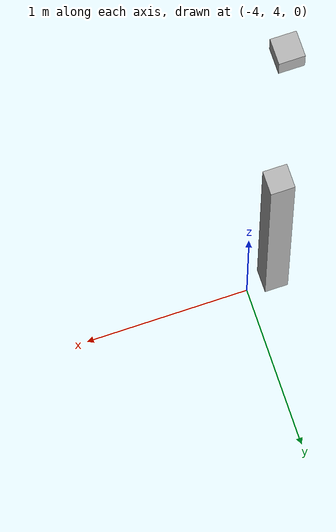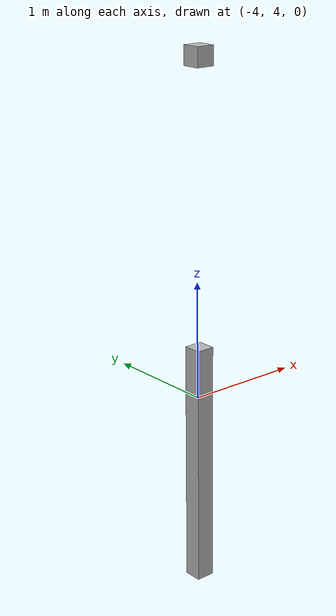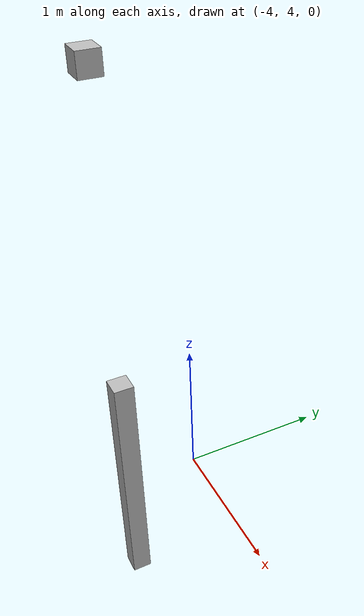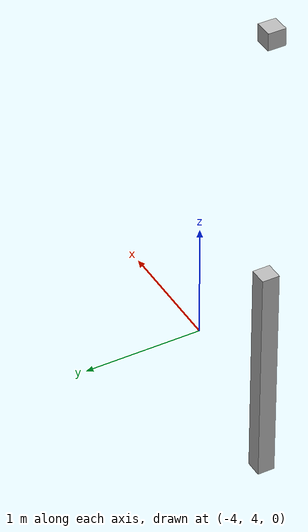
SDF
<sdf version="1.7">
 <world name="default">
  <model name="orthogonal_747_2.000.15_TS">
   <static>1</static>
   <link name="z_link_1_4_1">
    <inertial>
     <mass>1</mass>
     <inertia>
      <ixx>0.166667</ixx>
      <ixy>0</ixy>
      <ixz>0</ixz>
      <iyy>0.166667</iyy>
      <iyz>0</iyz>
      <izz>0.166667</izz>
     </inertia>
    </inertial>
    <pose>2.15 8.6 2.15 0 -0 0</pose>
    <visual name="visual_0">
     <laser_retro>1527</laser_retro>
     <geometry><box><size>0.15 1e-06 2</size></box></geometry>
     <material>
      <script><name>Gazebo/Grey</name><uri>file://media/materials/scripts/gazebo.material</uri></script>
      <shader type="pixel"><normal_map>__default__</normal_map></shader>
      <ambient>0.678 0.498 0.659 1</ambient>
      <diffuse>0.7 0.7 0.7 1</diffuse>
      <specular>0.01 0.01 0.01 1</specular>
      <emissive>0 0 0 1</emissive>
     </material>
     <pose>0 -0.075 0 0 -0 0</pose>
     <transparency>1</transparency>
    </visual>
    <visual name="visual_1">
     <laser_retro>1528</laser_retro>
     <geometry><box><size>0.15 1e-06 2</size></box></geometry>
     <material>
      <script><name>Gazebo/Grey</name><uri>file://media/materials/scripts/gazebo.material</uri></script>
      <shader type="pixel"><normal_map>__default__</normal_map></shader>
      <ambient>0.447 0.624 0.812 1</ambient>
      <diffuse>0.7 0.7 0.7 1</diffuse>
      <specular>0.01 0.01 0.01 1</specular>
      <emissive>0 0 0 1</emissive>
     </material>
     <pose>0 0.075 0 0 -0 0</pose>
     <transparency>1</transparency>
    </visual>
    <visual name="visual_2">
     <laser_retro>1529</laser_retro>
     <geometry><box><size>0.15 0.15 1e-06</size></box></geometry>
     <material>
      <script><name>Gazebo/Grey</name><uri>file://media/materials/scripts/gazebo.material</uri></script>
      <shader type="pixel"><normal_map>__default__</normal_map></shader>
      <ambient>0.988 0.686 0.243 1</ambient>
      <diffuse>0.7 0.7 0.7 1</diffuse>
      <specular>0.01 0.01 0.01 1</specular>
      <emissive>0 0 0 1</emissive>
     </material>
     <pose>0 0 -1 0 -0 0</pose>
     <transparency>1</transparency>
    </visual>
    <visual name="visual_3">
     <laser_retro>1530</laser_retro>
     <geometry><box><size>1e-06 0.15 2</size></box></geometry>
     <material>
      <script><name>Gazebo/Grey</name><uri>file://media/materials/scripts/gazebo.material</uri></script>
      <shader type="pixel"><normal_map>__default__</normal_map></shader>
      <ambient>0.988 0.914 0.31 1</ambient>
      <diffuse>0.7 0.7 0.7 1</diffuse>
      <specular>0.01 0.01 0.01 1</specular>
      <emissive>0 0 0 1</emissive>
     </material>
     <pose>0.075 0 0 0 -0 0</pose>
     <transparency>1</transparency>
    </visual>
    <visual name="visual_4">
     <laser_retro>1531</laser_retro>
     <geometry><box><size>0.15 0.15 1e-06</size></box></geometry>
     <material>
      <script><name>Gazebo/Grey</name><uri>file://media/materials/scripts/gazebo.material</uri></script>
      <shader type="pixel"><normal_map>__default__</normal_map></shader>
      <ambient>0.937 0.161 0.161 1</ambient>
      <diffuse>0.7 0.7 0.7 1</diffuse>
      <specular>0.01 0.01 0.01 1</specular>
      <emissive>0 0 0 1</emissive>
     </material>
     <pose>0 0 1 0 -0 0</pose>
     <transparency>1</transparency>
    </visual>
    <visual name="visual_5">
     <laser_retro>1532</laser_retro>
     <geometry><box><size>1e-06 0.15 2</size></box></geometry>
     <material>
      <script><name>Gazebo/Grey</name><uri>file://media/materials/scripts/gazebo.material</uri></script>
      <shader type="pixel"><normal_map>__default__</normal_map></shader>
      <ambient>0.541 0.886 0.204 1</ambient>
      <diffuse>0.7 0.7 0.7 1</diffuse>
      <specular>0.01 0.01 0.01 1</specular>
      <emissive>0 0 0 1</emissive>
     </material>
     <pose>-0.075 0 0 0 -0 0</pose>
     <transparency>1</transparency>
    </visual>
    <visual name="visual_texture">
     <geometry><box><size>0.149985 0.149985 1.9998</size></box></geometry>
     <material>
      <script>
       <uri>model://BASE_MODELS/simple_block_v2_textured/materials/scripts</uri>
       <uri>model://BASE_MODELS/simple_block_v2_textured/materials/textures</uri>
       <name>metal</name>
      </script>
     </material>
     <laser_retro>1533</laser_retro>
    </visual>
    <collision name="collision">
     <geometry><box><size>0.15 0.15 2</size></box></geometry>
     <surface>
      <friction>
       <ode><mu>1</mu><mu2>1</mu2><fdir1>0 0 0</fdir1><slip1>0</slip1><slip2>0</slip2></ode>
       <torsional>
        <coefficient>1</coefficient>
        <patch_radius>0</patch_radius>
        <surface_radius>0</surface_radius>
        <use_patch_radius>1</use_patch_radius>
        <ode><slip>0</slip></ode>
       </torsional>
      </friction>
      <bounce><restitution_coefficient>0</restitution_coefficient><threshold>1e+06</threshold></bounce>
      <contact>
       <collide_without_contact>0</collide_without_contact>
       <collide_without_contact_bitmask>1</collide_without_contact_bitmask>
       <collide_bitmask>1</collide_bitmask>
       <ode>
        <soft_cfm>0</soft_cfm>
        <soft_erp>0.2</soft_erp>
        <kp>1e+13</kp>
        <kd>1</kd>
        <max_vel>0.01</max_vel>
        <min_depth>0</min_depth>
       </ode>
       <bullet>
        <split_impulse>1</split_impulse>
        <split_impulse_penetration_threshold>-0.01</split_impulse_penetration_threshold>
        <soft_cfm>0</soft_cfm>
        <soft_erp>0.2</soft_erp>
        <kp>1e+13</kp>
        <kd>1</kd>
       </bullet>
      </contact>
     </surface>
    </collision>
   </link>
   <link name="u_link_2_4_1">
    <inertial>
     <mass>1</mass>
     <inertia>
      <ixx>0.166667</ixx>
      <ixy>0</ixy>
      <ixz>0</ixz>
      <iyy>0.166667</iyy>
      <iyz>0</iyz>
      <izz>0.166667</izz>
     </inertia>
    </inertial>
    <pose>2.15 8.6 5.375 0 -0 0</pose>
    <visual name="visual_0">
     <laser_retro>2423</laser_retro>
     <geometry><box><size>0.15 1e-06 0.15</size></box></geometry>
     <material>
      <script><name>Gazebo/Grey</name><uri>file://media/materials/scripts/gazebo.material</uri></script>
      <shader type="pixel"><normal_map>__default__</normal_map></shader>
      <ambient>0.678 0.498 0.659 1</ambient>
      <diffuse>0.7 0.7 0.7 1</diffuse>
      <specular>0.01 0.01 0.01 1</specular>
      <emissive>0 0 0 1</emissive>
     </material>
     <pose>0 -0.075 0 0 -0 0</pose>
     <transparency>1</transparency>
    </visual>
    <visual name="visual_1">
     <laser_retro>2424</laser_retro>
     <geometry><box><size>0.15 1e-06 0.15</size></box></geometry>
     <material>
      <script><name>Gazebo/Grey</name><uri>file://media/materials/scripts/gazebo.material</uri></script>
      <shader type="pixel"><normal_map>__default__</normal_map></shader>
      <ambient>0.447 0.624 0.812 1</ambient>
      <diffuse>0.7 0.7 0.7 1</diffuse>
      <specular>0.01 0.01 0.01 1</specular>
      <emissive>0 0 0 1</emissive>
     </material>
     <pose>0 0.075 0 0 -0 0</pose>
     <transparency>1</transparency>
    </visual>
    <visual name="visual_2">
     <laser_retro>2425</laser_retro>
     <geometry><box><size>0.15 0.15 1e-06</size></box></geometry>
     <material>
      <script><name>Gazebo/Grey</name><uri>file://media/materials/scripts/gazebo.material</uri></script>
      <shader type="pixel"><normal_map>__default__</normal_map></shader>
      <ambient>0.988 0.686 0.243 1</ambient>
      <diffuse>0.7 0.7 0.7 1</diffuse>
      <specular>0.01 0.01 0.01 1</specular>
      <emissive>0 0 0 1</emissive>
     </material>
     <pose>0 0 -0.075 0 -0 0</pose>
     <transparency>1</transparency>
    </visual>
    <visual name="visual_3">
     <laser_retro>2426</laser_retro>
     <geometry><box><size>1e-06 0.15 0.15</size></box></geometry>
     <material>
      <script><name>Gazebo/Grey</name><uri>file://media/materials/scripts/gazebo.material</uri></script>
      <shader type="pixel"><normal_map>__default__</normal_map></shader>
      <ambient>0.988 0.914 0.31 1</ambient>
      <diffuse>0.7 0.7 0.7 1</diffuse>
      <specular>0.01 0.01 0.01 1</specular>
      <emissive>0 0 0 1</emissive>
     </material>
     <pose>0.075 0 0 0 -0 0</pose>
     <transparency>1</transparency>
    </visual>
    <visual name="visual_4">
     <laser_retro>2427</laser_retro>
     <geometry><box><size>0.15 0.15 1e-06</size></box></geometry>
     <material>
      <script><name>Gazebo/Grey</name><uri>file://media/materials/scripts/gazebo.material</uri></script>
      <shader type="pixel"><normal_map>__default__</normal_map></shader>
      <ambient>0.937 0.161 0.161 1</ambient>
      <diffuse>0.7 0.7 0.7 1</diffuse>
      <specular>0.01 0.01 0.01 1</specular>
      <emissive>0 0 0 1</emissive>
     </material>
     <pose>0 0 0.075 0 -0 0</pose>
     <transparency>1</transparency>
    </visual>
    <visual name="visual_5">
     <laser_retro>2428</laser_retro>
     <geometry><box><size>1e-06 0.15 0.15</size></box></geometry>
     <material>
      <script><name>Gazebo/Grey</name><uri>file://media/materials/scripts/gazebo.material</uri></script>
      <shader type="pixel"><normal_map>__default__</normal_map></shader>
      <ambient>0.541 0.886 0.204 1</ambient>
      <diffuse>0.7 0.7 0.7 1</diffuse>
      <specular>0.01 0.01 0.01 1</specular>
      <emissive>0 0 0 1</emissive>
     </material>
     <pose>-0.075 0 0 0 -0 0</pose>
     <transparency>1</transparency>
    </visual>
    <visual name="visual_texture">
     <geometry><box><size>0.149985 0.149985 0.149985</size></box></geometry>
     <material>
      <script>
       <uri>model://BASE_MODELS/simple_block_v2_textured/materials/scripts</uri>
       <uri>model://BASE_MODELS/simple_block_v2_textured/materials/textures</uri>
       <name>metal</name>
      </script>
     </material>
     <laser_retro>2429</laser_retro>
    </visual>
    <collision name="collision">
     <geometry><box><size>0.15 0.15 0.15</size></box></geometry>
     <surface>
      <friction>
       <ode><mu>1</mu><mu2>1</mu2><fdir1>0 0 0</fdir1><slip1>0</slip1><slip2>0</slip2></ode>
       <torsional>
        <coefficient>1</coefficient>
        <patch_radius>0</patch_radius>
        <surface_radius>0</surface_radius>
        <use_patch_radius>1</use_patch_radius>
        <ode><slip>0</slip></ode>
       </torsional>
      </friction>
      <bounce><restitution_coefficient>0</restitution_coefficient><threshold>1e+06</threshold></bounce>
      <contact>
       <collide_without_contact>0</collide_without_contact>
       <collide_without_contact_bitmask>1</collide_without_contact_bitmask>
       <collide_bitmask>1</collide_bitmask>
       <ode>
        <soft_cfm>0</soft_cfm>
        <soft_erp>0.2</soft_erp>
        <kp>1e+13</kp>
        <kd>1</kd>
        <max_vel>0.01</max_vel>
        <min_depth>0</min_depth>
       </ode>
       <bullet>
        <split_impulse>1</split_impulse>
        <split_impulse_penetration_threshold>-0.01</split_impulse_penetration_threshold>
        <soft_cfm>0</soft_cfm>
        <soft_erp>0.2</soft_erp>
        <kp>1e+13</kp>
        <kd>1</kd>
       </bullet>
      </contact>
     </surface>
    </collision>
   </link>
   <pose>-6.47624 -5 -2.5 0 -0 0</pose>
  </model>
 </world>
</sdf>
